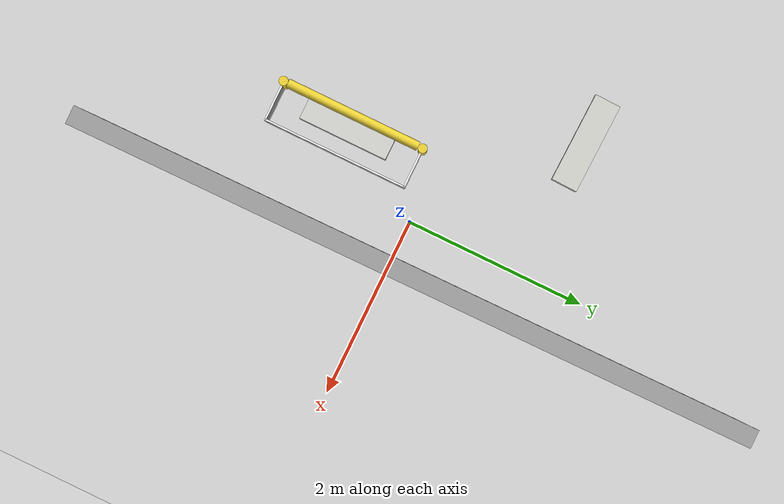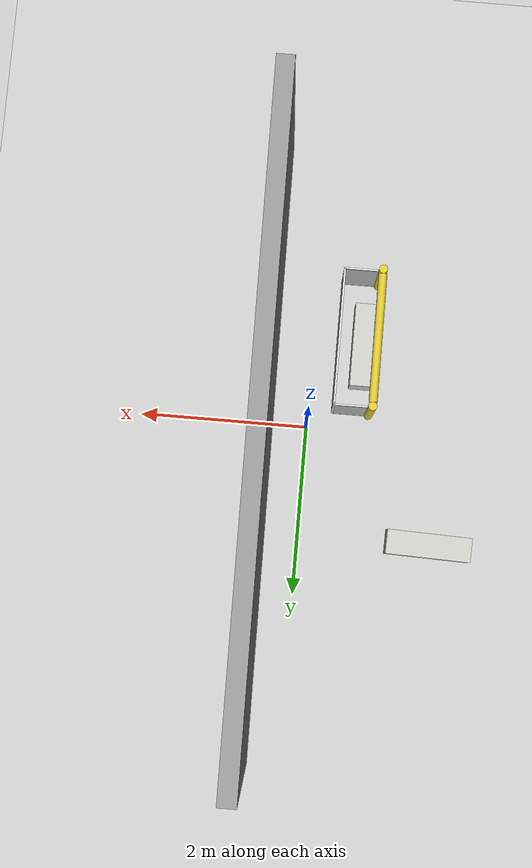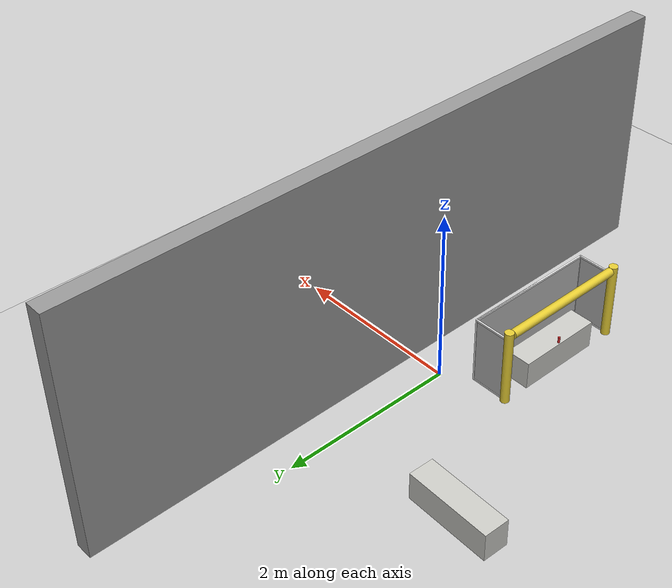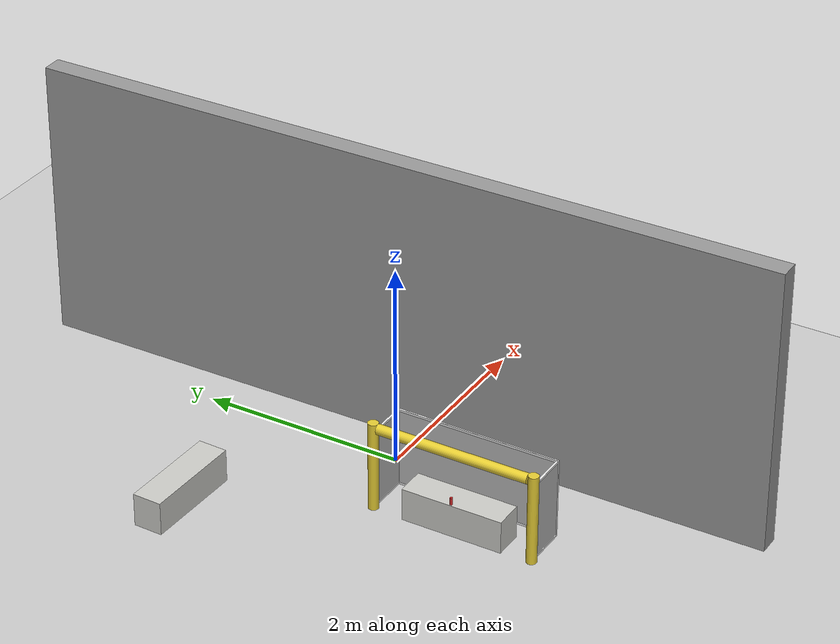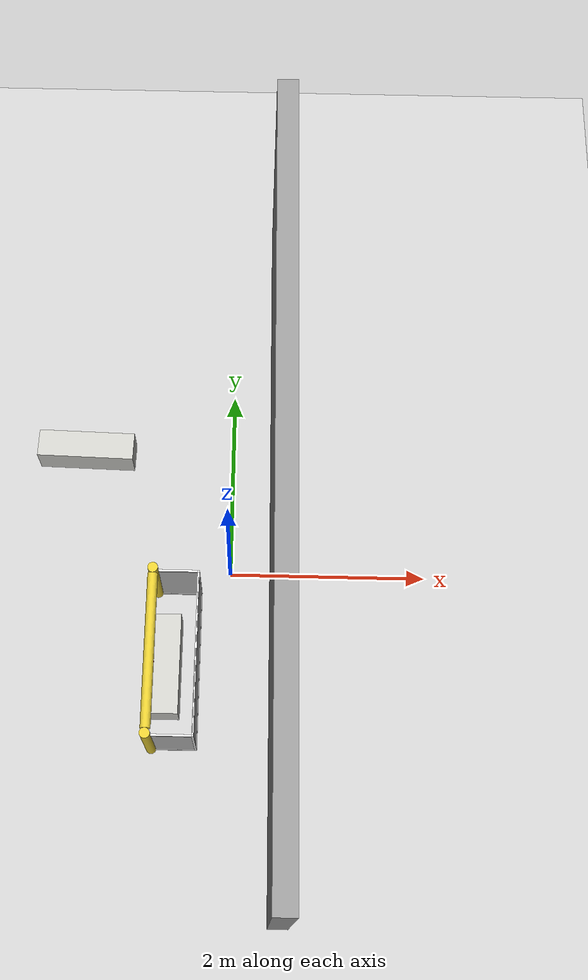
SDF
<sdf version="1.6">
 <world name="default">
  <light name="sun" type="directional">
   <pose>0 0 10 0 -0 0</pose>
   <diffuse>0.8 0.8 0.8 1</diffuse>
   <specular>0.2 0.2 0.2 1</specular>
   <attenuation>
    <range>1000</range>
    <constant>0.9</constant>
    <linear>0.01</linear>
    <quadratic>0.001</quadratic>
   </attenuation>
   <direction>-0.5 0.1 -0.9</direction>
  </light>
  <model name="ground_plane">
   <static>1</static>
   <link name="link">
    <collision name="collision">
     <geometry><plane><normal>0 0 1</normal><size>100 100</size></plane></geometry>
     <surface>
      <contact><collide_bitmask>65535</collide_bitmask></contact>
      <friction><ode><mu>100</mu><mu2>50</mu2></ode></friction>
     </surface>
    </collision>
    <visual name="visual">
     <cast_shadows>0</cast_shadows>
     <geometry><plane><normal>0 0 1</normal><size>100 100</size></plane></geometry>
     <material>
      <script><uri>file://media/materials/scripts/gazebo.material</uri><name>Gazebo/Grey</name></script>
     </material>
    </visual>
   </link>
  </model>
  <physics name="default_physics" default="0" type="ode">
   <real_time_update_rate>1000</real_time_update_rate>
   <max_step_size>0.001</max_step_size>
   <real_time_factor>1</real_time_factor>
   <ode>
    <solver>
     <type>quick</type>
     <iters>150</iters>
     <precon_iters>0</precon_iters>
     <sor>1.4</sor>
     <use_dynamic_moi_rescaling>1</use_dynamic_moi_rescaling>
    </solver>
    <constraints>
     <cfm>1e-05</cfm>
     <erp>0.2</erp>
     <contact_max_correcting_vel>2000</contact_max_correcting_vel>
     <contact_surface_layer>0.01</contact_surface_layer>
    </constraints>
   </ode>
  </physics>
  <scene><ambient>0.4 0.4 0.4 1</ambient><background>0.7 0.7 0.7 1</background><shadows>1</shadows></scene>
  <gravity>0 0 -9.8</gravity>
  <magnetic_field>6e-06 2.3e-05 -4.2e-05</magnetic_field>
  <atmosphere type="adiabatic"/>
  <audio><device>default</device></audio>
  <spherical_coordinates>
   <surface_model>EARTH_WGS84</surface_model>
   <latitude_deg>0</latitude_deg>
   <longitude_deg>0</longitude_deg>
   <elevation>0</elevation>
   <heading_deg>0</heading_deg>
  </spherical_coordinates>
  <model name="small_table">
   <link name="link">
    <inertial>
     <mass>0.815675</mass>
     <inertia>
      <ixx>0.075238</ixx>
      <ixy>0</ixy>
      <ixz>0</ixz>
      <iyy>0.0128756</iyy>
      <iyz>0</iyz>
      <izz>0.0735833</izz>
     </inertia>
    </inertial>
    <visual name="visual">
     <geometry><box><size>0.287297 1 0.326929</size></box></geometry>
     <material>
      <script><name>Gazebo/CeilingTiled</name><uri>file://media/materials/scripts/gazebo.material</uri></script>
      <shader type="pixel"><normal_map>__default__</normal_map></shader>
      <ambient>0.7 0.7 0.7 1</ambient>
      <diffuse>0.9 0.9 0.9 1</diffuse>
      <specular>0.01 0.01 0.01 1</specular>
      <emissive>0 0 0 1</emissive>
     </material>
    </visual>
    <collision name="collision">
     <geometry><box><size>0.287297 1 0.326929</size></box></geometry>
     <surface>
      <friction>
       <ode><mu>1</mu><mu2>1</mu2><fdir1>0 0 0</fdir1><slip1>0</slip1><slip2>0</slip2></ode>
       <torsional>
        <coefficient>1</coefficient>
        <patch_radius>0</patch_radius>
        <surface_radius>0</surface_radius>
        <use_patch_radius>1</use_patch_radius>
        <ode><slip>0</slip></ode>
       </torsional>
      </friction>
      <bounce><restitution_coefficient>0</restitution_coefficient><threshold>1e+06</threshold></bounce>
      <contact>
       <collide_without_contact>0</collide_without_contact>
       <collide_without_contact_bitmask>1</collide_without_contact_bitmask>
       <collide_bitmask>1</collide_bitmask>
       <ode>
        <soft_cfm>0</soft_cfm>
        <soft_erp>0.2</soft_erp>
        <kp>1e+13</kp>
        <kd>1</kd>
        <max_vel>0.01</max_vel>
        <min_depth>0</min_depth>
       </ode>
       <bullet>
        <split_impulse>1</split_impulse>
        <split_impulse_penetration_threshold>-0.01</split_impulse_penetration_threshold>
        <soft_cfm>0</soft_cfm>
        <soft_erp>0.2</soft_erp>
        <kp>1e+13</kp>
        <kd>1</kd>
       </bullet>
      </contact>
     </surface>
    </collision>
   </link>
   <static>0</static>
   <pose>-0.614467 -1.01595 0.154557 -0.000101 -0.008027 0.000289</pose>
  </model>
  <model name="grey_wall">
   <static>1</static>
   <link name="link">
    <pose>0 0 1.4 0 -0 0</pose>
    <collision name="collision"><geometry><box><size>7.5 0.2 2.8</size></box></geometry></collision>
    <visual name="visual">
     <cast_shadows>0</cast_shadows>
     <geometry><box><size>7.5 0.2 2.8</size></box></geometry>
     <material>
      <script>
       <uri>model://grey_wall/materials/scripts</uri>
       <uri>model://grey_wall/materials/textures</uri>
       <name>vrc/grey_wall</name>
      </script>
     </material>
    </visual>
   </link>
   <pose>0.501782 0.270909 0 0 0 -1.56179</pose>
  </model>
  <model name="grasp_cylinder_2">
   <link name="link">
    <inertial>
     <mass>0.05</mass>
     <inertia>
      <ixx>2.297e-05</ixx>
      <ixy>0</ixy>
      <ixz>0</ixz>
      <iyy>2.297e-05</iyy>
      <iyz>0</iyz>
      <izz>4.31e-06</izz>
     </inertia>
    </inertial>
    <visual name="visual">
     <geometry><cylinder><radius>0.0131252</radius><length>0.0706744</length></cylinder></geometry>
     <material>
      <script><name>Gazebo/Red</name><uri>file://media/materials/scripts/gazebo.material</uri></script>
      <shader type="vertex"><normal_map>__default__</normal_map></shader>
      <ambient>1 0 0 1</ambient>
      <diffuse>0.7 0.7 0.7 1</diffuse>
      <specular>0.01 0.01 0.01 1</specular>
      <emissive>0 0 0 1</emissive>
     </material>
    </visual>
    <collision name="collision">
     <geometry><cylinder><radius>0.013125</radius><length>0.070674</length></cylinder></geometry>
     <surface>
      <friction>
       <ode><mu>100</mu><mu2>100</mu2><fdir1>0 0 0</fdir1><slip1>0</slip1><slip2>0</slip2></ode>
       <torsional>
        <coefficient>1</coefficient>
        <patch_radius>0</patch_radius>
        <surface_radius>0</surface_radius>
        <use_patch_radius>1</use_patch_radius>
        <ode><slip>0</slip></ode>
       </torsional>
      </friction>
      <bounce><restitution_coefficient>0</restitution_coefficient><threshold>1e+06</threshold></bounce>
      <contact>
       <collide_without_contact>0</collide_without_contact>
       <collide_without_contact_bitmask>1</collide_without_contact_bitmask>
       <collide_bitmask>1</collide_bitmask>
       <ode>
        <soft_cfm>0</soft_cfm>
        <soft_erp>0.2</soft_erp>
        <kp>1e+13</kp>
        <kd>1</kd>
        <max_vel>0.01</max_vel>
        <min_depth>0</min_depth>
       </ode>
       <bullet>
        <split_impulse>1</split_impulse>
        <split_impulse_penetration_threshold>-0.01</split_impulse_penetration_threshold>
        <soft_cfm>0</soft_cfm>
        <soft_erp>0.2</soft_erp>
        <kp>1e+13</kp>
        <kd>1</kd>
       </bullet>
      </contact>
     </surface>
    </collision>
   </link>
   <static>0</static>
   <pose>-0.737365 -1.00707 0.352377 -2.5e-05 -0.008933 -0.009454</pose>
  </model>
  <model name="small_table_0">
   <link name="link">
    <inertial>
     <mass>1000</mass>
     <inertia><ixx>92.2402</ixx><ixy>0</ixy><ixz>0</ixz><iyy>15.7852</iyy><iyz>0</iyz><izz>90.2116</izz></inertia>
    </inertial>
    <visual name="visual">
     <geometry><box><size>0.287297 1 0.326929</size></box></geometry>
     <material>
      <script><name>Gazebo/CeilingTiled</name><uri>file://media/materials/scripts/gazebo.material</uri></script>
      <shader type="pixel"><normal_map>__default__</normal_map></shader>
      <ambient>0.7 0.7 0.7 1</ambient>
      <diffuse>0.9 0.9 0.9 1</diffuse>
      <specular>0.01 0.01 0.01 1</specular>
      <emissive>0 0 0 1</emissive>
     </material>
    </visual>
    <collision name="collision">
     <geometry><box><size>0.287297 1 0.326929</size></box></geometry>
     <surface>
      <friction>
       <ode><mu>1</mu><mu2>1</mu2><fdir1>0 0 0</fdir1><slip1>0</slip1><slip2>0</slip2></ode>
       <torsional>
        <coefficient>1</coefficient>
        <patch_radius>0</patch_radius>
        <surface_radius>0</surface_radius>
        <use_patch_radius>1</use_patch_radius>
        <ode><slip>0</slip></ode>
       </torsional>
      </friction>
      <bounce><restitution_coefficient>0</restitution_coefficient><threshold>1e+06</threshold></bounce>
      <contact>
       <collide_without_contact>0</collide_without_contact>
       <collide_without_contact_bitmask>1</collide_without_contact_bitmask>
       <collide_bitmask>1</collide_bitmask>
       <ode>
        <soft_cfm>0</soft_cfm>
        <soft_erp>0.2</soft_erp>
        <kp>1e+13</kp>
        <kd>1</kd>
        <max_vel>0.01</max_vel>
        <min_depth>0</min_depth>
       </ode>
       <bullet>
        <split_impulse>1</split_impulse>
        <split_impulse_penetration_threshold>-0.01</split_impulse_penetration_threshold>
        <soft_cfm>0</soft_cfm>
        <soft_erp>0.2</soft_erp>
        <kp>1e+13</kp>
        <kd>1</kd>
       </bullet>
      </contact>
     </surface>
    </collision>
   </link>
   <static>0</static>
   <pose>-1.54907 1.30177 0.163464 0 -0 1.54327</pose>
  </model>
  <light name="user_directional_light_0" type="directional">
   <pose>-4.28528 -1.4039 1 0 -0 0</pose>
   <diffuse>0.5 0.5 0.5 1</diffuse>
   <specular>0.1 0.1 0.1 1</specular>
   <direction>0.1 0.1 -0.9</direction>
   <attenuation>
    <range>20</range>
    <constant>0.5</constant>
    <linear>0.01</linear>
    <quadratic>0.001</quadratic>
   </attenuation>
  </light>
  <light name="user_directional_light_1" type="directional">
   <pose>3.85624 2.06994 1 0 -0 0</pose>
   <diffuse>0.5 0.5 0.5 1</diffuse>
   <specular>0.1 0.1 0.1 1</specular>
   <direction>0.1 0.1 -0.9</direction>
   <attenuation>
    <range>20</range>
    <constant>0.5</constant>
    <linear>0.01</linear>
    <quadratic>0.001</quadratic>
   </attenuation>
  </light>
  <light name="user_directional_light_2" type="directional">
   <pose>-4.66307 8.49749 1 0 -0 0</pose>
   <diffuse>0.5 0.5 0.5 1</diffuse>
   <specular>0.1 0.1 0.1 1</specular>
   <direction>0.1 0.1 -0.9</direction>
   <attenuation>
    <range>20</range>
    <constant>0.5</constant>
    <linear>0.01</linear>
    <quadratic>0.001</quadratic>
   </attenuation>
  </light>
  <light name="user_directional_light_3" type="directional">
   <pose>5.76901 8.68099 1 0 -0 0</pose>
   <diffuse>0.5 0.5 0.5 1</diffuse>
   <specular>0.1 0.1 0.1 1</specular>
   <direction>0.1 0.1 -0.9</direction>
   <attenuation>
    <range>20</range>
    <constant>0.5</constant>
    <linear>0.01</linear>
    <quadratic>0.001</quadratic>
   </attenuation>
  </light>
  <light name="user_directional_light_4" type="directional">
   <pose>4.22363 -8.46709 1 0 -0 0</pose>
   <diffuse>0.5 0.5 0.5 1</diffuse>
   <specular>0.1 0.1 0.1 1</specular>
   <direction>0.1 0.1 -0.9</direction>
   <attenuation>
    <range>20</range>
    <constant>0.5</constant>
    <linear>0.01</linear>
    <quadratic>0.001</quadratic>
   </attenuation>
  </light>
  <light name="user_directional_light_5" type="directional">
   <pose>-3.4048 -8.37436 1 0 -0 0</pose>
   <diffuse>0.5 0.5 0.5 1</diffuse>
   <specular>0.1 0.1 0.1 1</specular>
   <direction>0.1 0.1 -0.9</direction>
   <attenuation>
    <range>20</range>
    <constant>0.5</constant>
    <linear>0.01</linear>
    <quadratic>0.001</quadratic>
   </attenuation>
  </light>
  <model name="RoboCup 2014 SPL Goal">
   <static>1</static>
   <link name="left_post">
    <pose>0 0.8 0.45 0 -0 0</pose>
    <collision name="collision">
     <geometry><cylinder><radius>0.05</radius><length>0.9</length></cylinder></geometry>
    </collision>
    <visual name="visual">
     <geometry><cylinder><radius>0.05</radius><length>0.9</length></cylinder></geometry>
     <material>
      <script><uri>file://media/materials/scripts/gazebo.material</uri><name>Gazebo/ZincYellow</name></script>
     </material>
    </visual>
   </link>
   <link name="left_support_horiz_lower">
    <pose>0.24 0.8 0.01 0 -0 0</pose>
    <collision name="collision"><geometry><box><size>0.38 0.02 0.02</size></box></geometry></collision>
    <visual name="visual">
     <geometry><box><size>0.38 0.02 0.02</size></box></geometry>
     <material>
      <script><uri>file://media/materials/scripts/gazebo.material</uri><name>Gazebo/White</name></script>
     </material>
    </visual>
   </link>
   <link name="left_support_horiz_upper">
    <pose>0.24 0.8 0.79 0 -0 0</pose>
    <collision name="collision"><geometry><box><size>0.38 0.02 0.02</size></box></geometry></collision>
    <visual name="visual">
     <geometry><box><size>0.38 0.02 0.02</size></box></geometry>
     <material>
      <script><uri>file://media/materials/scripts/gazebo.material</uri><name>Gazebo/White</name></script>
     </material>
    </visual>
   </link>
   <link name="left_support_vertical">
    <pose>0.44 0.8 0.4 3.14159 1.57079 3.14159</pose>
    <collision name="collision"><geometry><box><size>0.8 0.02 0.02</size></box></geometry></collision>
    <visual name="visual">
     <geometry><box><size>0.8 0.02 0.02</size></box></geometry>
     <material>
      <script><uri>file://media/materials/scripts/gazebo.material</uri><name>Gazebo/White</name></script>
     </material>
    </visual>
   </link>
   <link name="right_support_horiz_lower">
    <pose>0.24 -0.8 0.01 0 -0 0</pose>
    <collision name="collision"><geometry><box><size>0.38 0.02 0.02</size></box></geometry></collision>
    <visual name="visual">
     <geometry><box><size>0.38 0.02 0.02</size></box></geometry>
     <material>
      <script><uri>file://media/materials/scripts/gazebo.material</uri><name>Gazebo/White</name></script>
     </material>
    </visual>
   </link>
   <link name="right_support_horiz_upper">
    <pose>0.24 -0.8 0.79 0 -0 0</pose>
    <collision name="collision"><geometry><box><size>0.38 0.02 0.02</size></box></geometry></collision>
    <visual name="visual">
     <geometry><box><size>0.38 0.02 0.02</size></box></geometry>
     <material>
      <script><uri>file://media/materials/scripts/gazebo.material</uri><name>Gazebo/White</name></script>
     </material>
    </visual>
   </link>
   <link name="right_support_vertical">
    <pose>0.44 -0.8 0.4 3.14159 1.57079 3.14159</pose>
    <collision name="collision"><geometry><box><size>0.8 0.02 0.02</size></box></geometry></collision>
    <visual name="visual">
     <geometry><box><size>0.8 0.02 0.02</size></box></geometry>
     <material>
      <script><uri>file://media/materials/scripts/gazebo.material</uri><name>Gazebo/White</name></script>
     </material>
    </visual>
   </link>
   <link name="center_support_horiz_lower">
    <pose>0.44 0 0.01 3.14159 1.57079 3.14159</pose>
    <collision name="collision"><geometry><box><size>0.02 1.58 0.02</size></box></geometry></collision>
    <visual name="visual">
     <geometry><box><size>0.02 1.58 0.02</size></box></geometry>
     <material>
      <script><uri>file://media/materials/scripts/gazebo.material</uri><name>Gazebo/White</name></script>
     </material>
    </visual>
   </link>
   <link name="center_support_horiz_upper">
    <pose>0.44 0 0.79 3.14159 1.57079 3.14159</pose>
    <collision name="collision"><geometry><box><size>0.02 1.58 0.02</size></box></geometry></collision>
    <visual name="visual">
     <geometry><box><size>0.02 1.58 0.02</size></box></geometry>
     <material>
      <script><uri>file://media/materials/scripts/gazebo.material</uri><name>Gazebo/White</name></script>
     </material>
    </visual>
   </link>
   <link name="right_post">
    <pose>0 -0.8 0.45 0 -0 0</pose>
    <collision name="collision">
     <geometry><cylinder><radius>0.05</radius><length>0.9</length></cylinder></geometry>
    </collision>
    <visual name="visual">
     <geometry><cylinder><radius>0.05</radius><length>0.9</length></cylinder></geometry>
     <material>
      <script><uri>file://media/materials/scripts/gazebo.material</uri><name>Gazebo/ZincYellow</name></script>
     </material>
    </visual>
   </link>
   <link name="crossbar">
    <pose>0 0 0.85 1.57 1.57 0</pose>
    <collision name="collision">
     <geometry><cylinder><radius>0.05</radius><length>1.5</length></cylinder></geometry>
    </collision>
    <visual name="visual">
     <geometry><cylinder><radius>0.05</radius><length>1.5</length></cylinder></geometry>
     <material>
      <script><uri>file://media/materials/scripts/gazebo.material</uri><name>Gazebo/ZincYellow</name></script>
     </material>
    </visual>
   </link>
   <link name="center_net">
    <pose>0.44 0 0.4 0 -0 0</pose>
    <collision name="collision"><geometry><box><size>0.01 1.6 0.8</size></box></geometry></collision>
    <visual name="visual">
     <geometry><box><size>0.01 1.6 0.8</size></box></geometry>
     <material>
      <script>
       <uri>model://robocup09_spl_field/materials/scripts/</uri>
       <uri>model://robocup09_spl_field/materials/textures/</uri>
       <name>RoboCup/Net</name>
      </script>
     </material>
    </visual>
   </link>
   <link name="left_net">
    <pose>0.24 0.8 0.4 0 -0 0</pose>
    <collision name="collision"><geometry><box><size>0.38 0.01 0.76</size></box></geometry></collision>
    <visual name="visual">
     <geometry><box><size>0.38 0.01 0.76</size></box></geometry>
     <material>
      <script>
       <uri>model://robocup09_spl_field/materials/scripts/</uri>
       <uri>model://robocup09_spl_field/materials/textures/</uri>
       <name>RoboCup/Net</name>
      </script>
     </material>
    </visual>
   </link>
   <link name="right_net">
    <pose>0.24 -0.8 0.4 0 -0 0</pose>
    <collision name="collision"><geometry><box><size>0.38 0.01 0.76</size></box></geometry></collision>
    <visual name="visual">
     <geometry><box><size>0.38 0.01 0.76</size></box></geometry>
     <material>
      <script>
       <uri>model://robocup09_spl_field/materials/scripts/</uri>
       <uri>model://robocup09_spl_field/materials/textures/</uri>
       <name>RoboCup/Net</name>
      </script>
     </material>
    </visual>
   </link>
   <pose>-0.734979 -1.01029 0 0 -0 0</pose>
  </model>
 </world>
</sdf>
